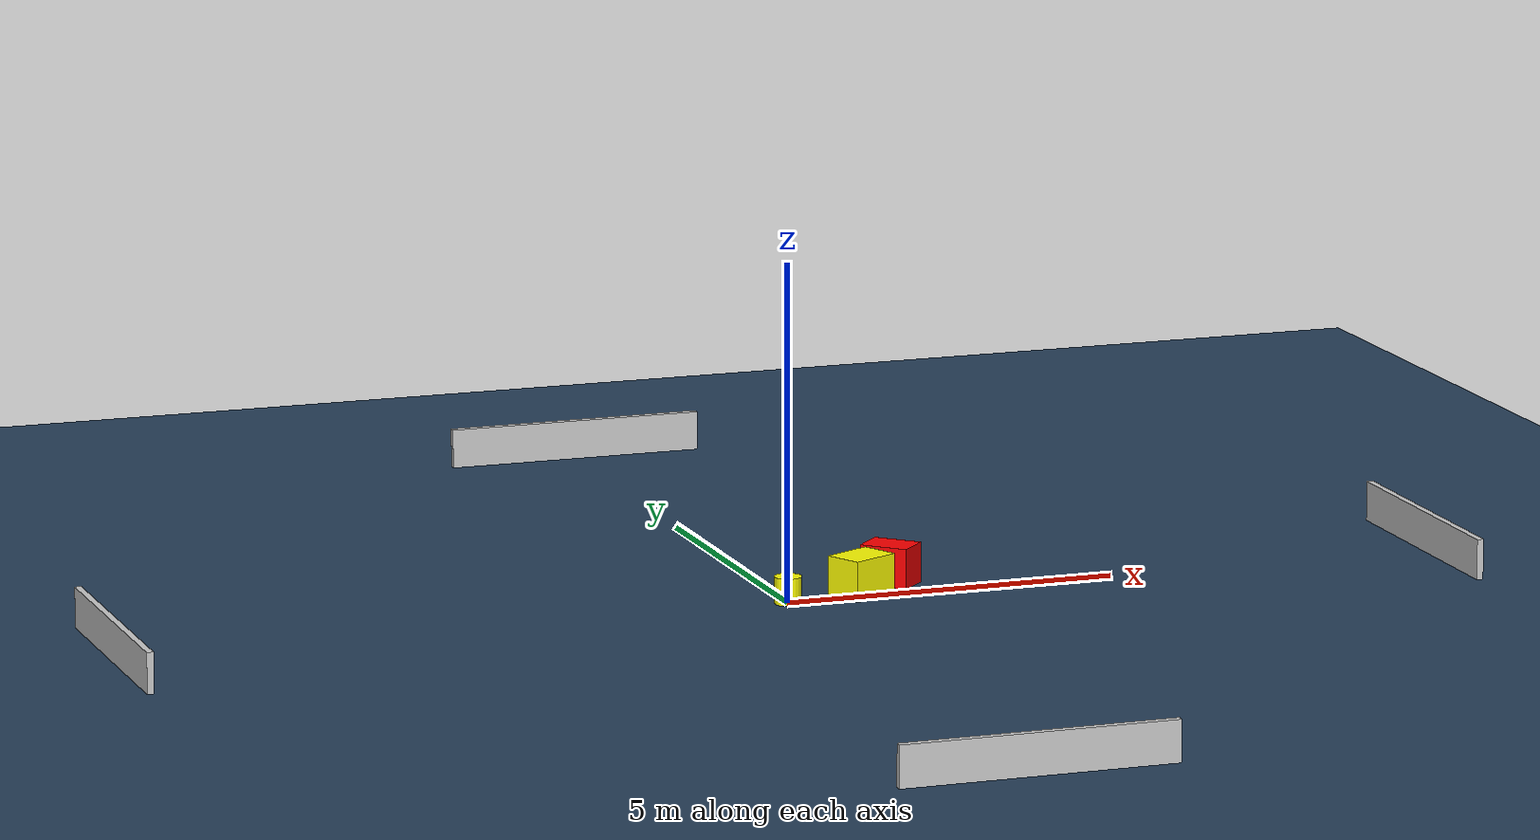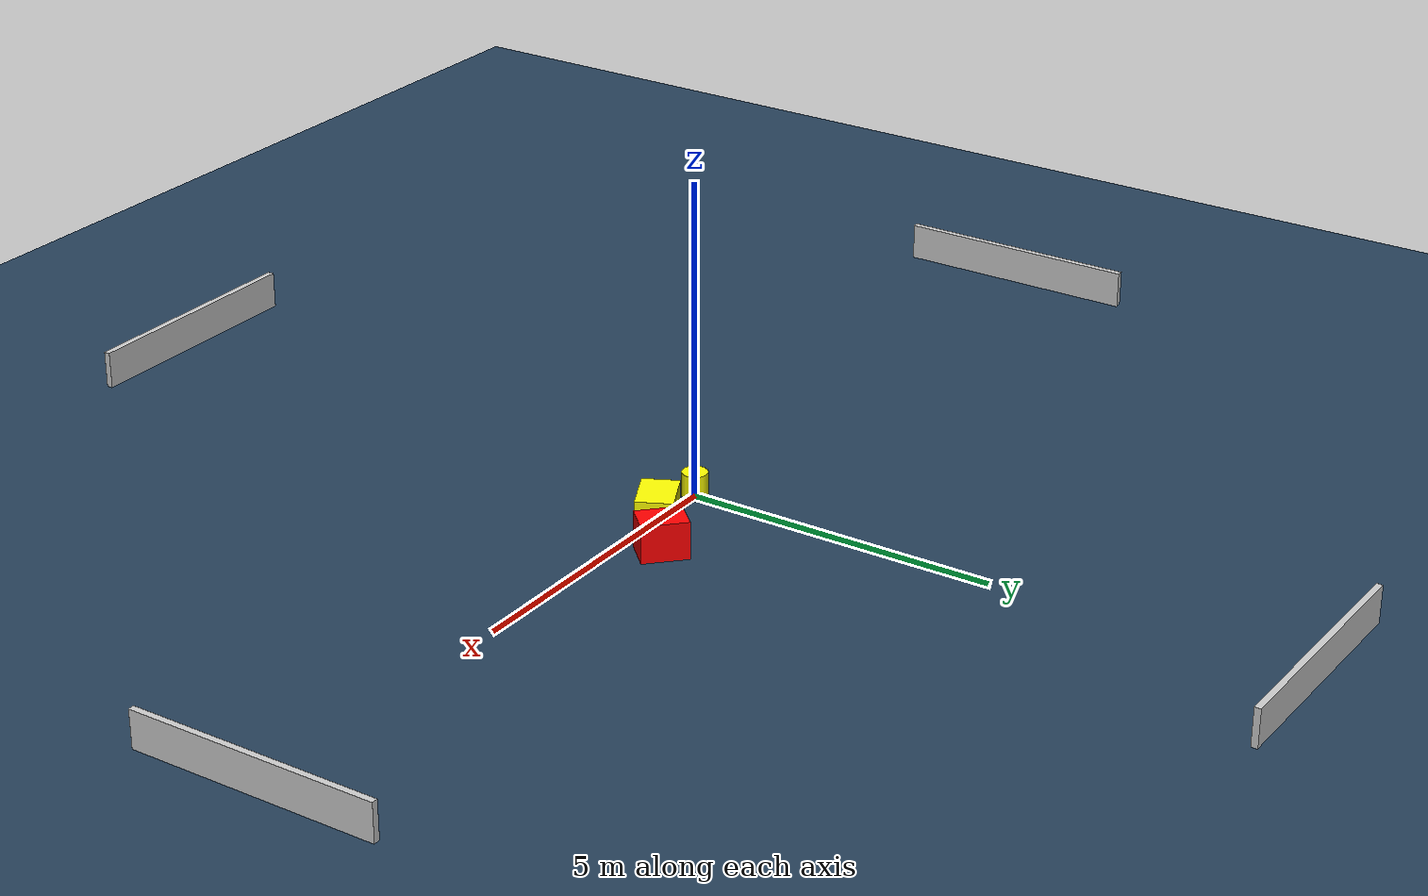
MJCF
<?xml version="1.0" ?>
<mujoco model="generated_environment">
  <option timestep="0.01" integrator="RK4" cone="elliptic"/>
  <default>
    <geom density="1"/>
  </default>
  <asset>
    <texture builtin="gradient" height="3072" name="skybox" rgb1="0.3 0.5 0.7" rgb2="0 0 0" type="skybox" width="512"/>
    <texture builtin="checker" height="300" name="groundplane" rgb1="0.2 0.3 0.4" rgb2="0.1 0.2 0.3" type="2d" width="300"/>
    <material name="groundplane" reflectance="0.2" texrepeat="5 5" texture="groundplane"/>
  </asset>
  <worldbody>
    <light dir="0 0 -1" directional="true" pos="0 0 1.5"/>
    <geom condim="3" friction="0.5 0.005 0.001" material="groundplane" name="floor" pos="0 0 0" size="0 0 0.05" type="plane"/>
    <body name="walls">
      <geom name="wall_1" condim="4" pos="-10.0 0.0 0.3" rgba="0.800000011920929 0.800000011920929 0.800000011920929 1.0" size="0.05 2.0 0.3" type="box"/>
      <geom name="wall_2" condim="4" pos="10.0 0.0 0.3" rgba="0.800000011920929 0.800000011920929 0.800000011920929 1.0" size="0.05 2.0 0.3" type="box"/>
      <geom name="wall_3" condim="4" pos="0.0 -10.0 0.3" rgba="0.800000011920929 0.800000011920929 0.800000011920929 1.0" size="2.0 0.05 0.3" type="box"/>
      <geom name="wall_4" condim="4" pos="0.0 10.0 0.3" rgba="0.800000011920929 0.800000011920929 0.800000011920929 1.0" size="2.0 0.05 0.3" type="box"/>
    </body>
    <body name="robot">
      <joint name="joint_x" type="slide" pos="0 0 0" axis="1 0 0"/>
      <joint name="joint_y" type="slide" pos="0 0 0" axis="0 1 0"/>
      <geom name="robot" type="cylinder" pos="0.0 0.0 0.2" size="0.2 0.2 0.0" mass="5.0" friction="1.0 0.005 0.0001" condim="4" rgba="1.0 1.0 0.0 1.0"/>
    </body>
    <body name="obstacle_1_movable">
      <geom name="obstacle_1_movable" condim="4" pos="1.1684817393482518 0.12290734185215307 0.3" euler="0 0 116.52930439149671" friction="0.0 0.005 0.001" rgba="1.0 1.0 0.0 1.0" size="0.2895575305185731 0.38630240075495215 0.3" type="box" mass="0.1"/>
      <joint type="free"/>
    </body>
    <body name="obstacle_2_static">
      <geom name="obstacle_2_static" condim="4" pos="1.8058796628004234 0.6320397903922641 0.3" euler="0 0 46.036785471621535" friction="0.0 0.005 0.001" rgba="1.0 0.0 0.0 1.0" size="0.2633924171965293 0.3636608191209715 0.3" type="box"/>
    </body>
  </worldbody>
  <actuator>
    <motor name="actuator_x" joint="joint_x" gear="1" ctrlrange="-1 1"/>
    <motor name="actuator_y" joint="joint_y" gear="1" ctrlrange="-1 1"/>
  </actuator>
</mujoco>
